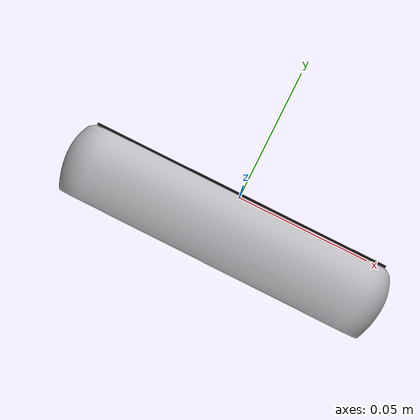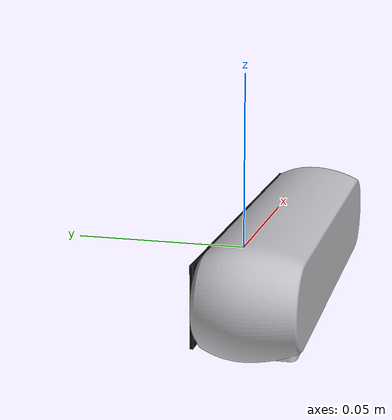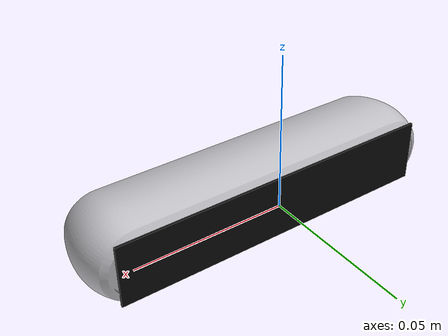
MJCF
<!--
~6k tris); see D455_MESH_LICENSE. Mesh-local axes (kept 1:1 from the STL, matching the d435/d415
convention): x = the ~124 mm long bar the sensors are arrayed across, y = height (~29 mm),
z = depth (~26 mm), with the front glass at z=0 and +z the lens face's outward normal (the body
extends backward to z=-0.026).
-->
<mujoco model="d455">
  <compiler angle="radian" meshdir="meshes" autolimits="true"/>

  <asset>
    <mesh name="d455_mesh" file="d455.obj"/>
    <material name="d455_body" rgba="0.75 0.75 0.77 1" specular="0.4" shininess="0.3"/>
    <material name="d455_glass" rgba="0.05 0.05 0.05 1" specular="0.6" shininess="0.6"/>
  </asset>

  <worldbody>
    <!-- quat reorients the mount so the lens looks along +y at rpy [0,0,0] (see header). -->
    <body name="mount" quat="0 0 0.70710678 0.70710678">
      <geom name="d455_visual" type="mesh" mesh="d455_mesh" material="d455_body"
            contype="0" conaffinity="0"/>
      <geom name="d455_front" type="box" pos="0 0 0.0003" size="0.055 0.0105 0.0004"
            material="d455_glass" contype="0" conaffinity="0"/>
      <geom name="d455_collision" type="box" pos="0 0 -0.0131" size="0.062 0.0145 0.013" group="3"/>
      <!-- Colour camera between the 95 mm-baseline stereo pair, looking outward (+z in mesh-local).
           pos is the colour-optical frame from _d455.urdf.xacro mapped into this frame. -->
      <camera name="d455_color" pos="-0.0115 0 -0.00465" xyaxes="-1 0 0 0 1 0"
              fovy="62" resolution="640 400"/>
    </body>
  </worldbody>
</mujoco>
